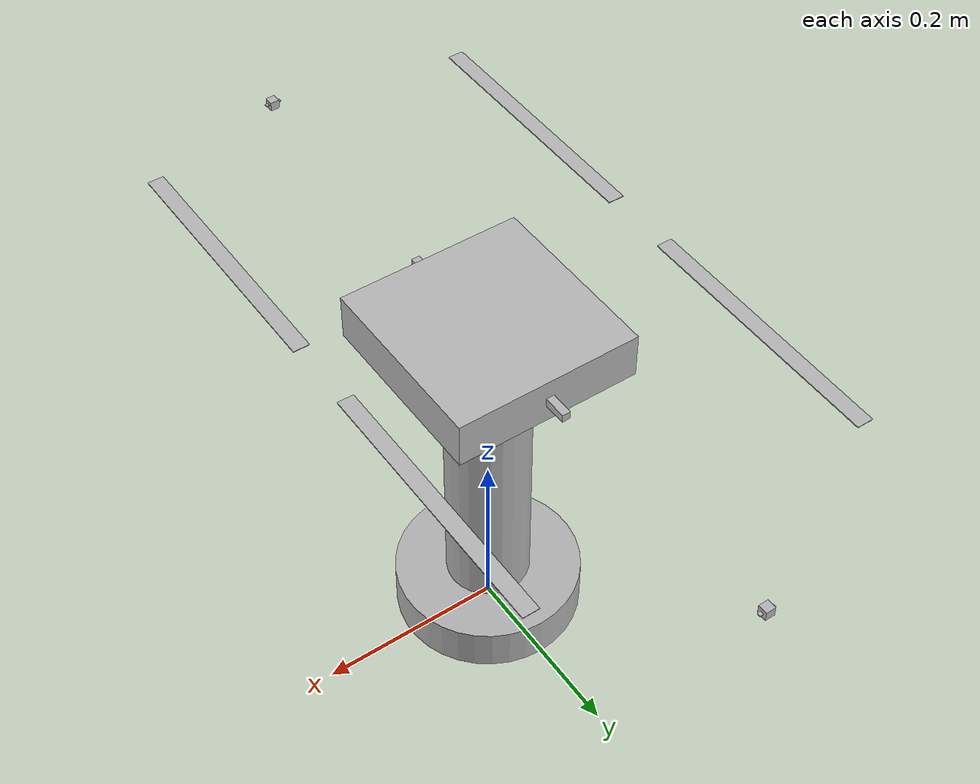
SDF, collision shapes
<?xml version="1.0" encoding="UTF-8"?>
<sdf version='1.9'>
  <model name='x500_dual_400_torque'>
<!-- FORCE SENSOR BASE -->
   <pose>0 0 0 0 0 1.57</pose>
    <static>false</static>
    <link name="sensor_link">
     <inertial>
        <pose>0 0 0 0 0 0</pose>
        <mass>500</mass>
        <inertia>
          <ixx>0.0411</ixx>
          <ixy>0</ixy>
          <ixz>0</ixz>
          <iyy>0.0411</iyy>
          <iyz>0</iyz>
          <izz>0.0411</izz>
        </inertia>
      </inertial>
      <visual name="sensor_link_visual">
        <pose>0 0 0 0 0 0</pose>
        <geometry>
          <mesh>
            <scale>1 1 1</scale>
            <uri>model://x500_dual_400/meshes/sensor_base.dae</uri>
          </mesh>
        </geometry>
      </visual>
      <!-- Collision definition -->
      <collision name="sensor_link_collision">
         <geometry>
          <mesh>
            <uri>model://x500_dual_400/meshes/sensor_base.dae</uri>
          </mesh>
        </geometry>
      </collision>
      </link>
<!-- FORCE SENSOR BASE END -->
<!-- UAV FRAME  -->
    <link name="base_link">
      <gravity>true</gravity>
      <self_collide>false</self_collide>
      <velocity_decay/>
      <pose>0 0 0.395 0 0 0</pose>
      <inertial>
        <pose>0 0 0.015702 0 0 0</pose>
        <mass>2.17</mass>
        <inertia>
          <ixx>0.0037</ixx>
          <ixy>0</ixy>
          <ixz>0</ixz>
          <iyy>0.0037</iyy>
          <iyz>0</iyz>
          <izz>0.0061</izz>
        </inertia>
      </inertial>
      <gravity>true</gravity>
      <velocity_decay/>
      <visual name="base_link_visual">
        <pose>0 0 0 0 0 0</pose>
        <geometry>
          <mesh>
            <scale>1 1 1</scale>
            <uri>model://x500_dual_400/meshes/uav_frame_x500.dae</uri>
          </mesh>
        </geometry>
      </visual>
      <!-- Collision definition -->
      <collision name="base_link_collision">
        <pose> 0 0 0 0 0 0</pose>
        <geometry>
          <box>
            <size>0.20 0.20 0.05 </size>
          </box>
        </geometry>
        <surface>
          <contact>
            <ode>
              <min_depth>0.001</min_depth>
              <max_vel>0</max_vel>
            </ode>
          </contact>
          <friction>
            <ode/>
          </friction>
        </surface>
      </collision>

      <sensor name="air_pressure_sensor" type="air_pressure">
        <always_on>1</always_on>
        <update_rate>50</update_rate>
        <air_pressure>
          <pressure>
            <noise type="gaussian">
              <mean>0</mean>
              <stddev>0.01</stddev>
            </noise>
          </pressure>
        </air_pressure>
      </sensor>
     <sensor name="imu_sensor" type="imu">
        <always_on>1</always_on>
        <update_rate>250</update_rate>
      </sensor>
    </link>

    <!-- Sensors and main frame END -->
    <joint name="uav_frame_joint" type="fixed">
      <parent>sensor_link</parent>
      <child>base_link</child>
      <pose> 0 0 -0.016 0 0 0 </pose>
        <sensor name= 'force_sensor' type='force_torque'>
            <always_on>true</always_on>
            <update_rate>100.0</update_rate>
            <visualize>true</visualize>
            <force_torque>
                <frame>sensor</frame>
                <measure_direction>child_to_parent</measure_direction>
            </force_torque>
            <topic>/wrench</topic>
        </sensor>
    </joint>
<!-- UAV FRAME END -->

<!-- Sensors and main frame END -->

<!-- Propellers definition -->
    <link name="rotor_0">
        <gravity>true</gravity>
        <self_collide>false</self_collide>
        <velocity_decay/>
        <pose>0.176876 -0.176876 0.450 0 0 0</pose>
        <inertial>
            <pose>0 0 -0.02 0 0 0</pose>
            <mass>0.075</mass>
            <inertia>
              <ixx>8.8307e-06</ixx>
              <iyy>8.8307e-06</iyy>
              <izz>7.5083e-06</izz>
            </inertia>
        </inertial>
       <visual name="rotor_0_visual">
        <pose>0 0 0 0 0 0</pose>
        <geometry>
          <mesh>
            <scale>1 1 1</scale>
            <uri>model://x500_dual_200/meshes/holybro_propeller_ccw.dae</uri>
          </mesh>
        </geometry>
      </visual>
      <collision name="rotor_0_collision">
        <pose>0 0 0 0 0 0 </pose>
        <geometry>
          <box>
            <size>0.2792307692307692 0.016923076923076923 0.0008461538461538462</size>
          </box>
        </geometry>
        <surface>
          <contact>
            <ode>
              <min_depth>0.001</min_depth>
              <max_vel>0</max_vel>
            </ode>
          </contact>
          <friction>
            <ode/>
          </friction>
        </surface>
      </collision>
    </link>
    <joint name="rotor_0_joint" type="revolute">
      <parent>base_link</parent>
      <child>rotor_0</child>
      <axis>
        <xyz>0 0 1</xyz>
        <limit>
          <lower>-1e+16</lower>
          <upper>1e+16</upper>
        </limit>
        <dynamics>
          <spring_reference>0</spring_reference>
          <spring_stiffness>0</spring_stiffness>
        </dynamics>
      </axis>
    </joint>

    <link name="rotor_1">
        <gravity>true</gravity>
        <self_collide>false</self_collide>
        <velocity_decay/>
        <pose>-0.176876 0.176876 0.450 0 0 0</pose>
        <inertial>
            <pose>0 0 -0.02 0 0 0</pose>
            <mass>0.075</mass>
            <inertia>
              <ixx>8.8307e-06</ixx>
              <iyy>8.8307e-06</iyy>
              <izz>7.5083e-06</izz>
            </inertia>
        </inertial>
       <visual name="rotor_1_visual">
        <pose>0 0 0 0 0 0</pose>
        <geometry>
          <mesh>
            <scale>1 1 1</scale>
            <uri>model://x500_dual_200/meshes/holybro_propeller_ccw.dae</uri>
          </mesh>
        </geometry>
      </visual>
      <collision name="rotor_1_collision">
        <pose>0 0 0 0 0 0 </pose>
        <geometry>
          <box>
            <size>0.2792307692307692 0.016923076923076923 0.0008461538461538462</size>
          </box>
        </geometry>
        <surface>
          <contact>
            <ode>
              <min_depth>0.001</min_depth>
              <max_vel>0</max_vel>
            </ode>
          </contact>
          <friction>
            <ode/>
          </friction>
        </surface>
      </collision>
    </link>
    <joint name="rotor_1_joint" type="revolute">
      <parent>base_link</parent>
      <child>rotor_1</child>
      <axis>
        <xyz>0 0 1</xyz>
        <limit>
          <lower>-1e+16</lower>
          <upper>1e+16</upper>
        </limit>
        <dynamics>
          <spring_reference>0</spring_reference>
          <spring_stiffness>0</spring_stiffness>
        </dynamics>
      </axis>
    </joint>

    <link name="rotor_2">
        <gravity>true</gravity>
        <self_collide>false</self_collide>
        <velocity_decay/>
        <pose> 0.176876 0.176876 0.450 0 0 0</pose>
        <inertial>
            <pose>0 0 -0.02 0 0 0</pose>
            <mass>0.075</mass>
            <inertia>
              <ixx>8.8307e-06</ixx>
              <iyy>8.8307e-06</iyy>
              <izz>7.5083e-06</izz>
            </inertia>
        </inertial>
       <visual name="rotor_2_visual">
        <pose>0 0 0 0 0 0</pose>
        <geometry>
          <mesh>
            <scale>1 1 1</scale>
            <uri>model://x500_dual_200/meshes/holybro_propeller_cw.dae</uri>
          </mesh>
        </geometry>
      </visual>
      <collision name="rotor_2_collision">
        <pose>0 0 0 0 0 0 </pose>
        <geometry>
          <box>
            <size>0.2792307692307692 0.016923076923076923 0.0008461538461538462</size>
          </box>
        </geometry>
        <surface>
          <contact>
            <ode>
              <min_depth>0.001</min_depth>
              <max_vel>0</max_vel>
            </ode>
          </contact>
          <friction>
            <ode/>
          </friction>
        </surface>
      </collision>
    </link>
    <joint name="rotor_2_joint" type="revolute">
      <parent>base_link</parent>
      <child>rotor_2</child>
      <axis>
        <xyz>0 0 1</xyz>
        <limit>
          <lower>-1e+16</lower>
          <upper>1e+16</upper>
        </limit>
        <dynamics>
          <spring_reference>0</spring_reference>
          <spring_stiffness>0</spring_stiffness>
        </dynamics>
      </axis>
    </joint>

    <link name="rotor_3">
        <gravity>true</gravity>
        <self_collide>false</self_collide>
        <velocity_decay/>
        <pose> -0.176876 -0.176876 0.450 0 0 0 </pose>
        <inertial>
            <pose>0 0 -0.02 0 0 0</pose>
            <mass>0.075</mass>
            <inertia>
              <ixx>8.8307e-06</ixx>
              <iyy>8.8307e-06</iyy>
              <izz>7.5083e-06</izz>
            </inertia>
        </inertial>
       <visual name="rotor_3_visual">
        <pose>0 0 0 0 0 0</pose>
        <geometry>
          <mesh>
            <scale>1 1 1</scale>
            <uri>model://x500_dual_200/meshes/holybro_propeller_cw.dae</uri>
          </mesh>
        </geometry>
      </visual>
      <collision name="rotor_3_collision">
        <pose>0 0 0 0 0 0 </pose>
        <geometry>
          <box>
            <size>0.2792307692307692 0.016923076923076923 0.0008461538461538462</size>
          </box>
        </geometry>
        <surface>
          <contact>
            <ode>
              <min_depth>0.001</min_depth>
              <max_vel>0</max_vel>
            </ode>
          </contact>
          <friction>
            <ode/>
          </friction>
        </surface>
      </collision>
    </link>
    <joint name="rotor_3_joint" type="revolute">
      <parent>base_link</parent>
      <child>rotor_3</child>
      <axis>
        <xyz>0 0 1</xyz>
        <limit>
          <lower>-1e+16</lower>
          <upper>1e+16</upper>
        </limit>
        <dynamics>
          <spring_reference>0</spring_reference>
          <spring_stiffness>0</spring_stiffness>
        </dynamics>
      </axis>
    </joint>
<!-- Propellers definition END-->

<!-- EDF Frame 400  -->

<!-- Manipulator arm  -->
    <link name="thrusters_frame_top">
        <gravity>true</gravity>
        <self_collide>false</self_collide>
        <velocity_decay/>
        <pose> 0.0 0 0.395 0 0 0 </pose>
        <inertial>
          <pose> 0 0 0.062 0 0 0</pose>
          <mass>0.088</mass>
          <inertia>
            <ixx>1.4300e-06</ixx>
            <iyy>0.0047</iyy>
            <izz>0.0047</izz>
        </inertia>
        </inertial>
       <visual name="thrusters_frame_top_visual">
        <pose>0 0 0 0 0 0</pose>
        <geometry>
          <mesh>
            <scale>1 1 1</scale>
            <uri>model://x500_dual_400/meshes/thrusters_frame_400_top.dae</uri>
          </mesh>
        </geometry>
      </visual>
      <!-- Correct the collision to be simple box -->
      <collision name="thrusters_frame_top_collision">
        <pose> 0 0 0 0 0 0 </pose>
        <geometry>
          <box>
            <size>0.250 0.009 0.009 </size>
          </box>
        </geometry>
        <surface>
          <contact>
            <ode>
              <min_depth>0.001</min_depth>
              <max_vel>0</max_vel>
            </ode>
          </contact>
          <friction>
            <ode/>
          </friction>
        </surface>
      </collision>
    </link>
    <!-- Correct the collision to be simple box -->
    <joint name="thrusters_frame_top_joint" type="fixed">
      <parent>base_link</parent>
      <child>thrusters_frame_top</child>
    </joint>

<!-- Manipulator arm  -->
    <link name="thrusters_frame_low">
        <gravity>true</gravity>
        <self_collide>false</self_collide>
        <velocity_decay/>
        <pose> 0.0 0 0.395 0 0 0 </pose>
        <inertial>
          <pose> 0 0 -0.030596 0 0 0</pose>
          <mass>0.116</mass>
          <inertia>
            <ixx>1.8850e-06</ixx>
            <iyy>0.0062</iyy>
            <izz>0.0062</izz>
        </inertia>
        </inertial>
       <visual name="thrusters_frame_low_visual">
        <pose>0 0 0 0 0 0</pose>
        <geometry>
          <mesh>
            <scale>1 1 1</scale>
            <uri>model://x500_dual_400/meshes/thrusters_frame_400_low.dae</uri>
          </mesh>
        </geometry>
      </visual>
      <!-- Correct the collision to be simple box -->
      <collision name="thrusters_frame_low_collision">
        <pose> 0 0 0 0 0 0 </pose>
        <geometry>
          <box>
            <size>0.250 0.009 0.009 </size>
          </box>
        </geometry>
        <surface>
          <contact>
            <ode>
              <min_depth>0.001</min_depth>
              <max_vel>0</max_vel>
            </ode>
          </contact>
          <friction>
            <ode/>
          </friction>
        </surface>
      </collision>
    </link>
    <!-- Correct the collision to be simple box -->
    <joint name="thrusters_frame_low_joint" type="fixed">
      <parent>base_link</parent>
      <child>thrusters_frame_low</child>
    </joint>
<!-- EDF Frame 400 END -->
<link name="edf_1_body">
        <gravity>true</gravity>
        <self_collide>false</self_collide>
        <velocity_decay/>
        <pose> 0.400 0 0.411 0 0 0 </pose>
        <inertial>
            <mass>0.175</mass>
            <inertia>
              <ixx>6.3787e-05</ixx>
              <iyy>8.6158e-05</iyy>
              <izz>8.6158e-05</izz>
            </inertia>
        </inertial>
       <visual name="edf_1_visual">
        <pose>0 0 0 0 0 0</pose>
        <geometry>
          <mesh>
            <scale>1 1 1</scale>
            <uri>model://x500_dual_400/meshes/edf_housing.dae</uri>
          </mesh>
        </geometry>
      </visual>
      <collision name="edf_1_collision">
        <pose>0 0 0 0 0 0 </pose>
        <geometry>
          <box>
            <size>0.01 0.01 0.01</size>
          </box>
        </geometry>
        <surface>
          <contact>
            <ode>
              <min_depth>0.001</min_depth>
              <max_vel>0</max_vel>
            </ode>
          </contact>
          <friction>
            <ode/>
          </friction>
        </surface>
      </collision>
    </link>
    <joint name="edf_1_joint" type="revolute">
      <parent>thrusters_frame_low</parent>
      <child>edf_1_body</child>
      <pose> 0 0 0 0 0 0 </pose>
      <axis>
        <xyz>0 0 1</xyz>
        <limit>
          <lower>-3.145159</lower>
          <upper>3.145159</upper>
        </limit>
        <dynamics>
          <friction>1.0</friction>
          <spring_reference>0</spring_reference>
          <spring_stiffness>0</spring_stiffness>
        </dynamics>
      </axis>
    </joint>

    <link name="edf_2_body">
        <gravity>true</gravity>
        <self_collide>false</self_collide>
        <velocity_decay/>
        <pose> -0.400 0 0.411 0 0 3.14159 </pose>
        <inertial>
            <mass>0.175</mass>
            <inertia>
              <ixx>6.3787e-05</ixx>
              <iyy>8.6158e-05</iyy>
              <izz>8.6158e-05</izz>
            </inertia>
        </inertial>
       <visual name="edf_2_visual">
        <pose>0 0 0 0 0 0</pose>
        <geometry>
          <mesh>
            <scale>1 1 1</scale>
            <uri>model://x500_dual_400/meshes/edf_housing.dae</uri>
          </mesh>
        </geometry>
      </visual>
      <collision name="edf_2_collision">
        <pose>0 0 0 0 0 0 </pose>
        <geometry>
          <box>
            <size>0.01 0.01 0.01</size>
          </box>
        </geometry>
        <surface>
          <contact>
            <ode>
              <min_depth>0.001</min_depth>
              <max_vel>0</max_vel>
            </ode>
          </contact>
          <friction>
            <ode/>
          </friction>
        </surface>
      </collision>
    </link>
    <joint name="edf_2_joint" type="revolute">
      <parent>thrusters_frame_low</parent>
      <child>edf_2_body</child>
      <pose> 0 0 0 0 0 0 </pose>
      <axis>
        <xyz>0 0 1</xyz>
        <limit>
          <lower>-3.145159</lower>
          <upper>3.145159</upper>
        </limit>
        <dynamics>
          <friction>1.0</friction>
          <spring_reference>0</spring_reference>
          <spring_stiffness>0</spring_stiffness>
        </dynamics>
      </axis>
    </joint>

<link name="rotor_4">
        <gravity>true</gravity>
        <self_collide>false</self_collide>
        <velocity_decay/>
        <pose> 0.400 0.0  0.411 0.0 1.5708 3.145159</pose>
        <inertial>
          <mass>0.025</mass>
          <inertia>
            <ixx>3.9146e-06</ixx>
            <iyy>3.9146e-06</iyy>
            <izz>7.8125e-06</izz>
          </inertia>
        </inertial>
       <visual name="rotor_4_visual">
        <pose>0 0 0 0 0 0</pose>
        <geometry>
          <mesh>
            <scale>1 1 1</scale>
            <uri>model://x500_dual_400/meshes/edf_impeler.dae</uri>
          </mesh>
        </geometry>
      </visual>
      <collision name="rotor_4_collision">
        <pose>0 0 0 0 0 0 </pose>
        <geometry>
          <box>
            <size>0.0008461538461538462 0.016923076923076923 0.004</size>
          </box>
        </geometry>
        <surface>
          <contact>
            <ode>
              <min_depth>0.001</min_depth>
              <max_vel>0</max_vel>
            </ode>
          </contact>
          <friction>
            <ode/>
          </friction>
        </surface>
      </collision>
    </link>
    <joint name="rotor_4_joint" type="revolute">
      <parent>edf_1_body</parent>
      <child>rotor_4</child>
      <axis>
        <xyz>0 0 1</xyz>
        <limit>
          <lower>-1e+16</lower>
          <upper>1e+16</upper>
        </limit>
        <dynamics>
          <spring_reference>0</spring_reference>
          <spring_stiffness>0</spring_stiffness>
        </dynamics>
      </axis>
    </joint>

<link name="rotor_5">
        <gravity>true</gravity>
        <self_collide>false</self_collide>
        <velocity_decay/>
        <pose> -0.400 0.0  0.411  0.0 1.5708 0.0</pose>
        <inertial>
          <mass>0.025</mass>
          <inertia>
            <ixx>3.9146e-06</ixx>
            <iyy>3.9146e-06</iyy>
            <izz>7.8125e-06</izz>
          </inertia>
        </inertial>
       <visual name="rotor_5_visual">
        <pose>0 0 0 0 0 0</pose>
        <geometry>
          <mesh>
            <scale>1 1 1</scale>
            <uri>model://x500_dual_400/meshes/edf_impeler.dae</uri>
          </mesh>
        </geometry>
      </visual>
      <collision name="rotor_5_collision">
        <pose>0 0 0 0 0 0 </pose>
        <geometry>
          <box>
            <size>0.0008461538461538462 0.016923076923076923 0.004</size>
          </box>
        </geometry>
        <surface>
          <contact>
            <ode>
              <min_depth>0.001</min_depth>
              <max_vel>0</max_vel>
            </ode>
          </contact>
          <friction>
            <ode/>
          </friction>
        </surface>
      </collision>
    </link>
    <joint name="rotor_5_joint" type="revolute">
      <parent>edf_2_body</parent>
      <child>rotor_5</child>
      <axis>
        <xyz>0 0 1</xyz>
        <limit>
          <lower>-1e+16</lower>
          <upper>1e+16</upper>
        </limit>
        <dynamics>
          <spring_reference>0</spring_reference>
          <spring_stiffness>0</spring_stiffness>
        </dynamics>
      </axis>
    </joint>
<!-- Horizontal thrusters -->

<!-- Manipulator arm  -->

<!-- Manipulator arm  END -->
<!-- Additional Rotors 4,5END -->

   <plugin filename="gz-sim-multicopter-motor-model-system" name="gz::sim::systems::MulticopterMotorModel">
      <jointName>rotor_0_joint</jointName>
      <linkName>rotor_0</linkName>
      <turningDirection>ccw</turningDirection>
      <timeConstantUp>0.0125</timeConstantUp>
      <timeConstantDown>0.025</timeConstantDown>
      <maxRotVelocity>1225.22</maxRotVelocity>
      <motorConstant>11.1913e-06</motorConstant>
      <momentConstant>0.016</momentConstant>
      <commandSubTopic>command/motor_speed</commandSubTopic>
      <motorNumber>0</motorNumber>
      <rotorDragCoefficient>8.06428e-05</rotorDragCoefficient>
      <rollingMomentCoefficient>1e-06</rollingMomentCoefficient>
      <rotorVelocitySlowdownSim>10</rotorVelocitySlowdownSim>
      <motorType>velocity</motorType>
    </plugin>
    <plugin filename="gz-sim-multicopter-motor-model-system" name="gz::sim::systems::MulticopterMotorModel">
      <jointName>rotor_1_joint</jointName>
      <linkName>rotor_1</linkName>
      <turningDirection>ccw</turningDirection>
      <timeConstantUp>0.0125</timeConstantUp>
      <timeConstantDown>0.025</timeConstantDown>
      <maxRotVelocity>1225.22</maxRotVelocity>
      <motorConstant>11.1913e-06</motorConstant>
      <momentConstant>0.016</momentConstant>
      <commandSubTopic>command/motor_speed</commandSubTopic>
      <motorNumber>1</motorNumber>
      <rotorDragCoefficient>8.06428e-05</rotorDragCoefficient>
      <rollingMomentCoefficient>1e-06</rollingMomentCoefficient>
      <rotorVelocitySlowdownSim>10</rotorVelocitySlowdownSim>
      <motorType>velocity</motorType>
    </plugin>
    <plugin filename="gz-sim-multicopter-motor-model-system" name="gz::sim::systems::MulticopterMotorModel">
      <jointName>rotor_2_joint</jointName>
      <linkName>rotor_2</linkName>
      <turningDirection>cw</turningDirection>
      <timeConstantUp>0.0125</timeConstantUp>
      <timeConstantDown>0.025</timeConstantDown>
      <maxRotVelocity>1225.22</maxRotVelocity>
      <motorConstant>11.1913e-06</motorConstant>
      <momentConstant>0.016</momentConstant>
      <commandSubTopic>command/motor_speed</commandSubTopic>
      <motorNumber>2</motorNumber>
      <rotorDragCoefficient>8.06428e-05</rotorDragCoefficient>
      <rollingMomentCoefficient>1e-06</rollingMomentCoefficient>
      <rotorVelocitySlowdownSim>10</rotorVelocitySlowdownSim>
      <motorType>velocity</motorType>
    </plugin>
    <plugin filename="gz-sim-multicopter-motor-model-system" name="gz::sim::systems::MulticopterMotorModel">
      <jointName>rotor_3_joint</jointName>
      <linkName>rotor_3</linkName>
      <turningDirection>cw</turningDirection>
      <timeConstantUp>0.0125</timeConstantUp>
      <timeConstantDown>0.025</timeConstantDown>
      <maxRotVelocity>1225.22</maxRotVelocity>
      <motorConstant>11.1913e-06</motorConstant>
      <momentConstant>0.016</momentConstant>
      <commandSubTopic>command/motor_speed</commandSubTopic>
      <motorNumber>3</motorNumber>
      <rotorDragCoefficient>8.06428e-05</rotorDragCoefficient>
      <rollingMomentCoefficient>1e-06</rollingMomentCoefficient>
      <rotorVelocitySlowdownSim>10</rotorVelocitySlowdownSim>
      <motorType>velocity</motorType>
    </plugin>

    <!-- Horizontal thrusters -->
    <plugin filename="gz-sim-multicopter-motor-model-system" name="gz::sim::systems::MulticopterMotorModel">
      <jointName>rotor_4_joint</jointName>
      <linkName>rotor_4</linkName>
      <turningDirection>ccw</turningDirection>
      <timeConstantUp>0.0125</timeConstantUp>
      <timeConstantDown>0.025</timeConstantDown>
      <maxRotVelocity>1000</maxRotVelocity>
      <motorConstant>8.54858e-06</motorConstant>
      <momentConstant>0.016</momentConstant>
      <commandSubTopic>command/motor_speed</commandSubTopic>
      <motorNumber>4</motorNumber>
      <rotorDragCoefficient>8.06428e-05</rotorDragCoefficient>
      <rollingMomentCoefficient>1e-06</rollingMomentCoefficient>
      <rotorVelocitySlowdownSim>10</rotorVelocitySlowdownSim>
      <motorType>velocity</motorType>
    </plugin>

    <plugin filename="gz-sim-multicopter-motor-model-system" name="gz::sim::systems::MulticopterMotorModel">
      <jointName>rotor_5_joint</jointName>
      <linkName>rotor_5</linkName>
      <turningDirection>ccw</turningDirection>
      <timeConstantUp>0.0125</timeConstantUp>
      <timeConstantDown>0.025</timeConstantDown>
      <maxRotVelocity>1000</maxRotVelocity>
      <motorConstant>8.54858e-06</motorConstant>
      <momentConstant>0.016</momentConstant>
      <commandSubTopic>command/motor_speed</commandSubTopic>
      <motorNumber>5</motorNumber>
      <rotorDragCoefficient>8.06428e-05</rotorDragCoefficient>
      <rollingMomentCoefficient>1e-06</rollingMomentCoefficient>
      <rotorVelocitySlowdownSim>10</rotorVelocitySlowdownSim>
      <motorType>velocity</motorType>
    </plugin>
<!-- Horizontal thrusters END-->

  </model>
</sdf>
